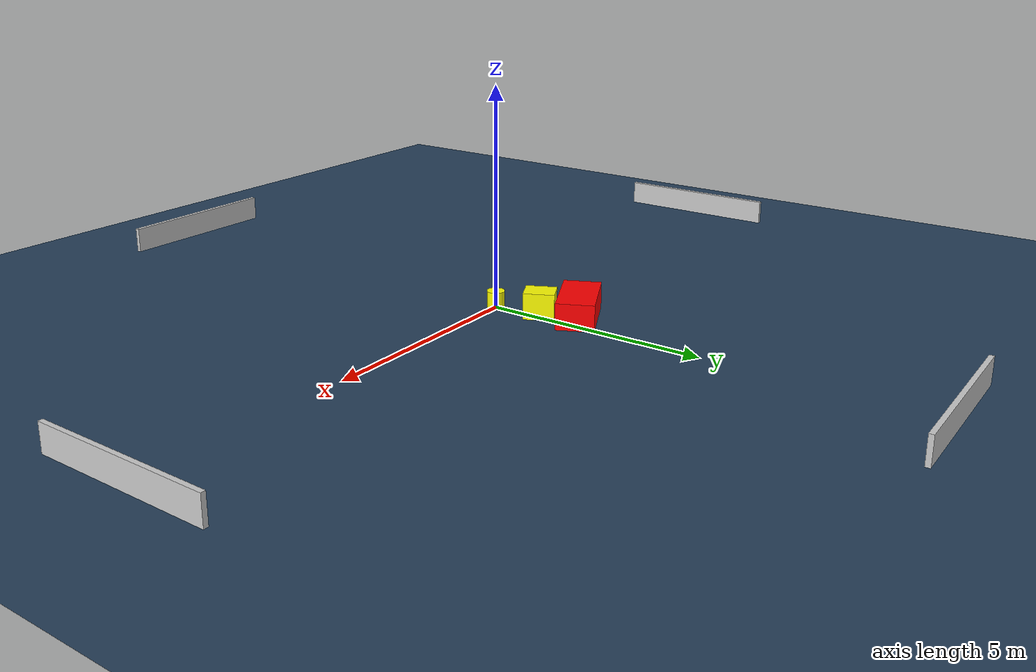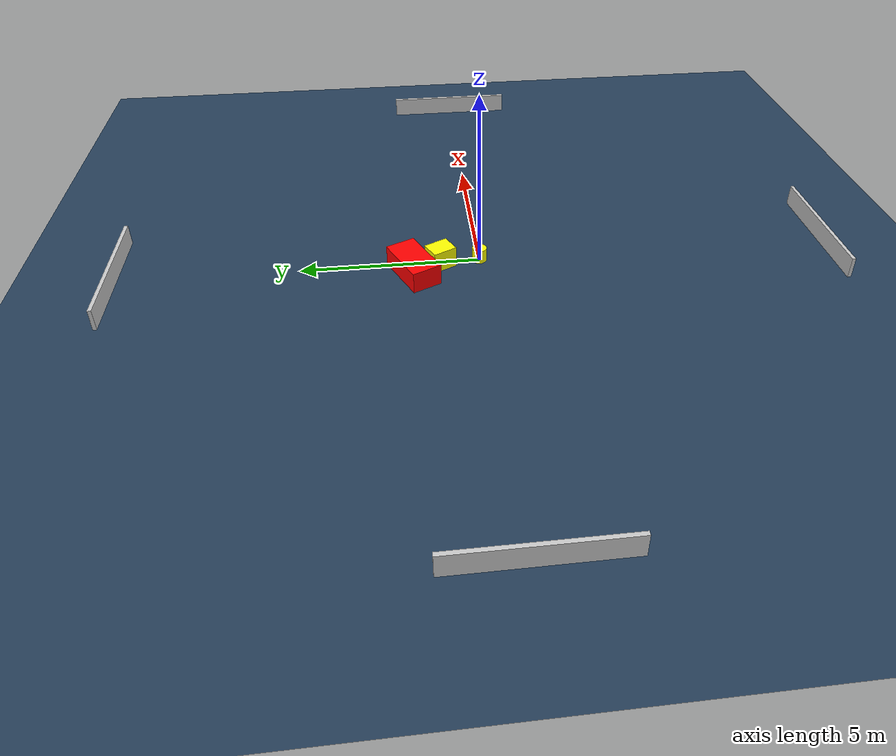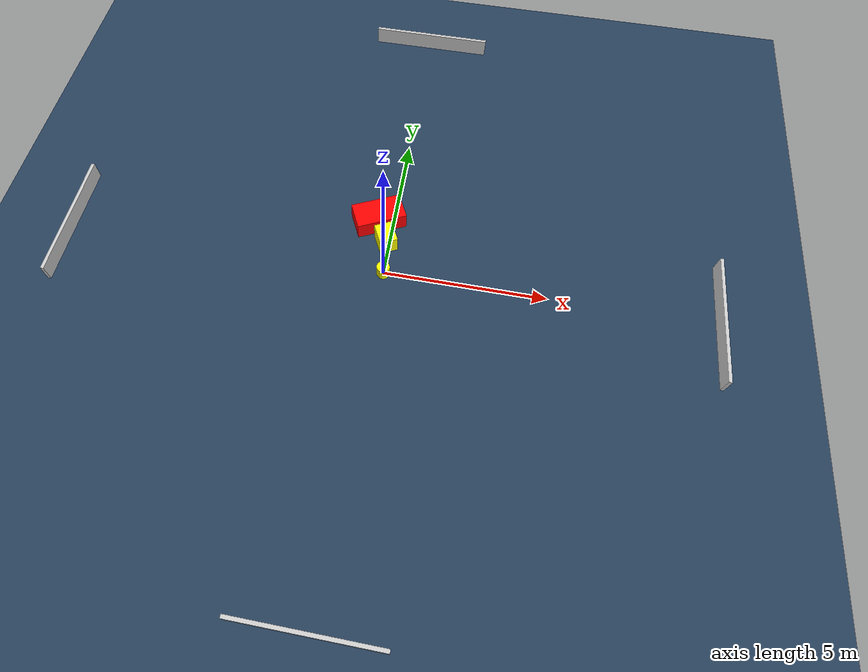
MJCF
<?xml version="1.0" ?>
<mujoco model="generated_environment">
  <option timestep="0.01" integrator="RK4" cone="elliptic"/>
  <default>
    <geom density="1"/>
  </default>
  <asset>
    <texture builtin="gradient" height="3072" name="skybox" rgb1="0.3 0.5 0.7" rgb2="0 0 0" type="skybox" width="512"/>
    <texture builtin="checker" height="300" name="groundplane" rgb1="0.2 0.3 0.4" rgb2="0.1 0.2 0.3" type="2d" width="300"/>
    <material name="groundplane" reflectance="0.2" texrepeat="5 5" texture="groundplane"/>
  </asset>
  <worldbody>
    <light dir="0 0 -1" directional="true" pos="0 0 1.5"/>
    <geom condim="3" friction="0.5 0.005 0.001" material="groundplane" name="floor" pos="0 0 0" size="0 0 0.05" type="plane"/>
    <body name="walls">
      <geom name="wall_1" condim="4" pos="-10.0 0.0 0.3" rgba="0.800000011920929 0.800000011920929 0.800000011920929 1.0" size="0.05 2.0 0.3" type="box"/>
      <geom name="wall_2" condim="4" pos="10.0 0.0 0.3" rgba="0.800000011920929 0.800000011920929 0.800000011920929 1.0" size="0.05 2.0 0.3" type="box"/>
      <geom name="wall_3" condim="4" pos="0.0 -10.0 0.3" rgba="0.800000011920929 0.800000011920929 0.800000011920929 1.0" size="2.0 0.05 0.3" type="box"/>
      <geom name="wall_4" condim="4" pos="0.0 10.0 0.3" rgba="0.800000011920929 0.800000011920929 0.800000011920929 1.0" size="2.0 0.05 0.3" type="box"/>
    </body>
    <body name="robot">
      <joint name="joint_x" type="slide" pos="0 0 0" axis="1 0 0"/>
      <joint name="joint_y" type="slide" pos="0 0 0" axis="0 1 0"/>
      <geom name="robot" type="cylinder" pos="0.0 0.0 0.2" size="0.2 0.2 0.0" mass="5.0" friction="1.0 0.005 0.0001" condim="4" rgba="1.0 1.0 0.0 1.0"/>
    </body>
    <body name="obstacle_1_movable">
      <geom name="obstacle_1_movable" condim="4" pos="-0.11692881442511864 1.1052873916269121 0.3" euler="0 0 296.58371587976706" friction="0.0 0.005 0.001" rgba="1.0 1.0 0.0 1.0" size="0.34457710652744594 0.2779965749351439 0.3" type="box" mass="0.1"/>
      <joint type="free"/>
    </body>
    <body name="obstacle_2_static">
      <geom name="obstacle_2_static" condim="4" pos="-0.48087537635671623 1.8731495627020267 0.3" euler="0 0 205.5068700862358" friction="0.0 0.005 0.001" rgba="1.0 0.0 0.0 1.0" size="0.7834683859464331 0.4222629566973827 0.3" type="box"/>
    </body>
  </worldbody>
  <actuator>
    <motor name="actuator_x" joint="joint_x" gear="1" ctrlrange="-1 1"/>
    <motor name="actuator_y" joint="joint_y" gear="1" ctrlrange="-1 1"/>
  </actuator>
</mujoco>
